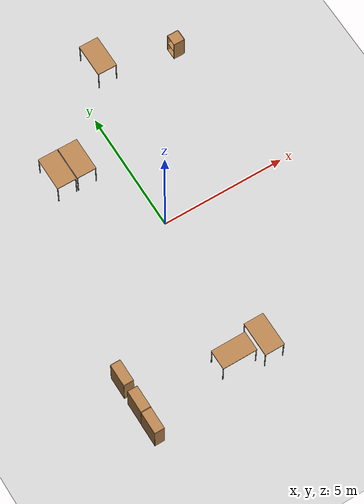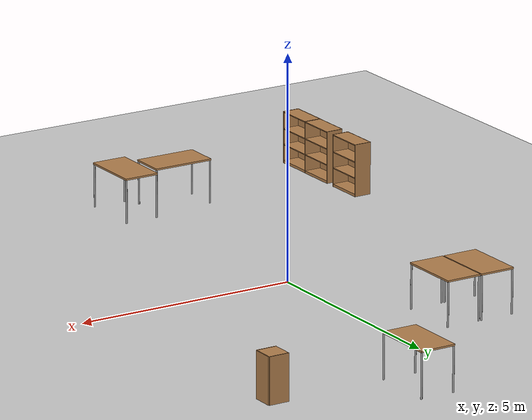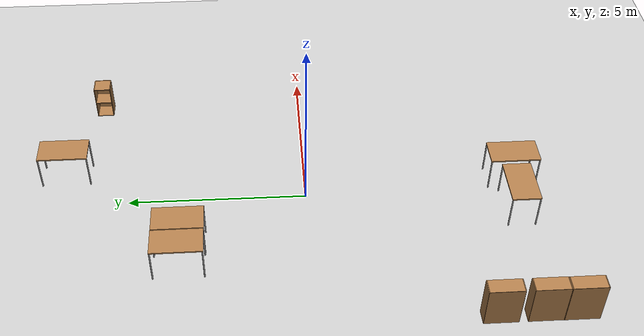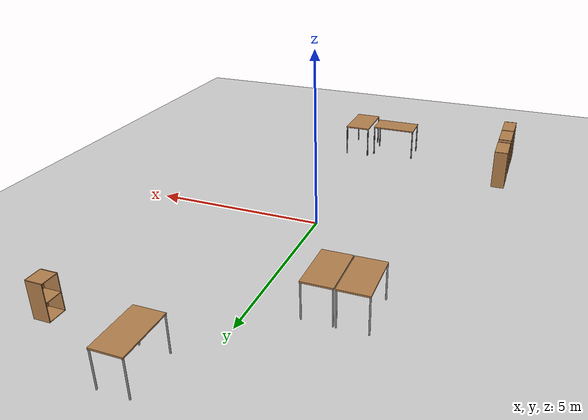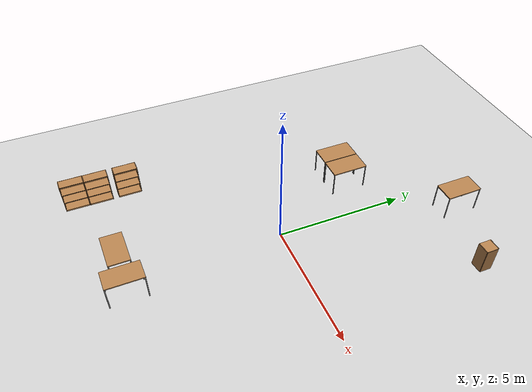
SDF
<sdf version="1.6">
 <world name="default">
  <light name="sun" type="directional">
   <pose>0 0 15 0 -0 0</pose>
   <diffuse>1 1 1 1</diffuse>
   <specular>0.1 0.1 0.1 1</specular>
   <attenuation>
    <range>1000</range>
    <constant>0.9</constant>
    <linear>0.01</linear>
    <quadratic>0.001</quadratic>
   </attenuation>
   <direction>-0.5 0.5 -1</direction>
  </light>
  <model name="ground_plane">
   <static>1</static>
   <link name="link">
    <collision name="collision">
     <geometry><plane><normal>0 0 1</normal><size>100 100</size></plane></geometry>
     <surface><friction><ode><mu>100</mu><mu2>50</mu2></ode></friction></surface>
    </collision>
    <visual name="visual">
     <transparency>1</transparency>
     <cast_shadows>0</cast_shadows>
     <geometry><plane><normal>0 0 1</normal><size>100 100</size></plane></geometry>
     <material>
      <script><uri>file://media/materials/scripts/gazebo.material</uri><name>Gazebo/Grey</name></script>
     </material>
    </visual>
   </link>
  </model>
  <gravity>0 0 -9.8</gravity>
  <magnetic_field>6e-06 2.3e-05 -4.2e-05</magnetic_field>
  <atmosphere type="adiabatic"/>
  <physics name="default_physics" default="0" type="ode">
   <max_step_size>0.001</max_step_size>
   <real_time_factor>1</real_time_factor>
   <real_time_update_rate>1000</real_time_update_rate>
  </physics>
  <scene><ambient>0.4 0.4 0.4 1</ambient><background>0.7 0.7 0.7 1</background><shadows>1</shadows></scene>
  <spherical_coordinates>
   <surface_model>EARTH_WGS84</surface_model>
   <latitude_deg>0</latitude_deg>
   <longitude_deg>0</longitude_deg>
   <elevation>0</elevation>
   <heading_deg>0</heading_deg>
  </spherical_coordinates>
  <model name="bookshelf">
   <static>1</static>
   <link name="link">
    <inertial><mass>1</mass></inertial>
    <collision name="back">
     <pose>0 0.005 0.6 0 -0 0</pose>
     <geometry><box><size>0.9 0.01 1.2</size></box></geometry>
    </collision>
    <visual name="visual1">
     <pose>0 0.005 0.6 0 -0 0</pose>
     <geometry><box><size>0.9 0.01 1.2</size></box></geometry>
     <material>
      <script><uri>file://media/materials/scripts/gazebo.material</uri><name>Gazebo/Wood</name></script>
     </material>
    </visual>
    <collision name="left_side">
     <pose>0.45 -0.195 0.6 0 -0 0</pose>
     <geometry><box><size>0.02 0.4 1.2</size></box></geometry>
    </collision>
    <visual name="visual2">
     <pose>0.45 -0.195 0.6 0 -0 0</pose>
     <geometry><box><size>0.02 0.4 1.2</size></box></geometry>
     <material>
      <script><uri>file://media/materials/scripts/gazebo.material</uri><name>Gazebo/Wood</name></script>
     </material>
    </visual>
    <collision name="right_side">
     <pose>-0.45 -0.195 0.6 0 -0 0</pose>
     <geometry><box><size>0.02 0.4 1.2</size></box></geometry>
    </collision>
    <visual name="visual3">
     <pose>-0.45 -0.195 0.6 0 -0 0</pose>
     <geometry><box><size>0.02 0.4 1.2</size></box></geometry>
     <material>
      <script><uri>file://media/materials/scripts/gazebo.material</uri><name>Gazebo/Wood</name></script>
     </material>
    </visual>
    <collision name="bottom">
     <pose>0 -0.195 0.03 0 -0 0</pose>
     <geometry><box><size>0.88 0.4 0.06</size></box></geometry>
    </collision>
    <visual name="visual4">
     <pose>0 -0.195 0.03 0 -0 0</pose>
     <geometry><box><size>0.88 0.4 0.06</size></box></geometry>
     <material>
      <script><uri>file://media/materials/scripts/gazebo.material</uri><name>Gazebo/Wood</name></script>
     </material>
    </visual>
    <collision name="top">
     <pose>0 -0.195 1.19 0 -0 0</pose>
     <geometry><box><size>0.88 0.4 0.02</size></box></geometry>
    </collision>
    <visual name="visual5">
     <pose>0 -0.195 1.19 0 -0 0</pose>
     <geometry><box><size>0.88 0.4 0.02</size></box></geometry>
     <material>
      <script><uri>file://media/materials/scripts/gazebo.material</uri><name>Gazebo/Wood</name></script>
     </material>
    </visual>
    <collision name="low_shelf">
     <pose>0 -0.195 0.43 0 -0 0</pose>
     <geometry><box><size>0.88 0.4 0.02</size></box></geometry>
    </collision>
    <visual name="visual6">
     <pose>0 -0.195 0.43 0 -0 0</pose>
     <geometry><box><size>0.88 0.4 0.02</size></box></geometry>
     <material>
      <script><uri>file://media/materials/scripts/gazebo.material</uri><name>Gazebo/Wood</name></script>
     </material>
    </visual>
    <collision name="high_shelf">
     <pose>0 -0.195 0.8 0 -0 0</pose>
     <geometry><box><size>0.88 0.4 0.02</size></box></geometry>
    </collision>
    <visual name="visual7">
     <pose>0 -0.195 0.8 0 -0 0</pose>
     <geometry><box><size>0.88 0.4 0.02</size></box></geometry>
     <material>
      <script><uri>file://media/materials/scripts/gazebo.material</uri><name>Gazebo/Wood</name></script>
     </material>
    </visual>
   </link>
   <pose>-4.76339 -5.75801 0 0 -0 1.57196</pose>
  </model>
  <model name="bookshelf_clone">
   <static>1</static>
   <link name="link">
    <inertial><mass>1</mass></inertial>
    <collision name="back">
     <pose>0 0.005 0.6 0 -0 0</pose>
     <geometry><box><size>0.9 0.01 1.2</size></box></geometry>
    </collision>
    <visual name="visual1">
     <pose>0 0.005 0.6 0 -0 0</pose>
     <geometry><box><size>0.9 0.01 1.2</size></box></geometry>
     <material>
      <script><uri>file://media/materials/scripts/gazebo.material</uri><name>Gazebo/Wood</name></script>
     </material>
    </visual>
    <collision name="left_side">
     <pose>0.45 -0.195 0.6 0 -0 0</pose>
     <geometry><box><size>0.02 0.4 1.2</size></box></geometry>
    </collision>
    <visual name="visual2">
     <pose>0.45 -0.195 0.6 0 -0 0</pose>
     <geometry><box><size>0.02 0.4 1.2</size></box></geometry>
     <material>
      <script><uri>file://media/materials/scripts/gazebo.material</uri><name>Gazebo/Wood</name></script>
     </material>
    </visual>
    <collision name="right_side">
     <pose>-0.45 -0.195 0.6 0 -0 0</pose>
     <geometry><box><size>0.02 0.4 1.2</size></box></geometry>
    </collision>
    <visual name="visual3">
     <pose>-0.45 -0.195 0.6 0 -0 0</pose>
     <geometry><box><size>0.02 0.4 1.2</size></box></geometry>
     <material>
      <script><uri>file://media/materials/scripts/gazebo.material</uri><name>Gazebo/Wood</name></script>
     </material>
    </visual>
    <collision name="bottom">
     <pose>0 -0.195 0.03 0 -0 0</pose>
     <geometry><box><size>0.88 0.4 0.06</size></box></geometry>
    </collision>
    <visual name="visual4">
     <pose>0 -0.195 0.03 0 -0 0</pose>
     <geometry><box><size>0.88 0.4 0.06</size></box></geometry>
     <material>
      <script><uri>file://media/materials/scripts/gazebo.material</uri><name>Gazebo/Wood</name></script>
     </material>
    </visual>
    <collision name="top">
     <pose>0 -0.195 1.19 0 -0 0</pose>
     <geometry><box><size>0.88 0.4 0.02</size></box></geometry>
    </collision>
    <visual name="visual5">
     <pose>0 -0.195 1.19 0 -0 0</pose>
     <geometry><box><size>0.88 0.4 0.02</size></box></geometry>
     <material>
      <script><uri>file://media/materials/scripts/gazebo.material</uri><name>Gazebo/Wood</name></script>
     </material>
    </visual>
    <collision name="low_shelf">
     <pose>0 -0.195 0.43 0 -0 0</pose>
     <geometry><box><size>0.88 0.4 0.02</size></box></geometry>
    </collision>
    <visual name="visual6">
     <pose>0 -0.195 0.43 0 -0 0</pose>
     <geometry><box><size>0.88 0.4 0.02</size></box></geometry>
     <material>
      <script><uri>file://media/materials/scripts/gazebo.material</uri><name>Gazebo/Wood</name></script>
     </material>
    </visual>
    <collision name="high_shelf">
     <pose>0 -0.195 0.8 0 -0 0</pose>
     <geometry><box><size>0.88 0.4 0.02</size></box></geometry>
    </collision>
    <visual name="visual7">
     <pose>0 -0.195 0.8 0 -0 0</pose>
     <geometry><box><size>0.88 0.4 0.02</size></box></geometry>
     <material>
      <script><uri>file://media/materials/scripts/gazebo.material</uri><name>Gazebo/Wood</name></script>
     </material>
    </visual>
   </link>
   <pose>-4.76825 -6.67766 0 0 -0 1.57211</pose>
  </model>
  <model name="bookshelf_clone_0">
   <static>1</static>
   <link name="link">
    <inertial><mass>1</mass></inertial>
    <collision name="back">
     <pose>0 0.005 0.6 0 -0 0</pose>
     <geometry><box><size>0.9 0.01 1.2</size></box></geometry>
    </collision>
    <visual name="visual1">
     <pose>0 0.005 0.6 0 -0 0</pose>
     <geometry><box><size>0.9 0.01 1.2</size></box></geometry>
     <material>
      <script><uri>file://media/materials/scripts/gazebo.material</uri><name>Gazebo/Wood</name></script>
     </material>
    </visual>
    <collision name="left_side">
     <pose>0.45 -0.195 0.6 0 -0 0</pose>
     <geometry><box><size>0.02 0.4 1.2</size></box></geometry>
    </collision>
    <visual name="visual2">
     <pose>0.45 -0.195 0.6 0 -0 0</pose>
     <geometry><box><size>0.02 0.4 1.2</size></box></geometry>
     <material>
      <script><uri>file://media/materials/scripts/gazebo.material</uri><name>Gazebo/Wood</name></script>
     </material>
    </visual>
    <collision name="right_side">
     <pose>-0.45 -0.195 0.6 0 -0 0</pose>
     <geometry><box><size>0.02 0.4 1.2</size></box></geometry>
    </collision>
    <visual name="visual3">
     <pose>-0.45 -0.195 0.6 0 -0 0</pose>
     <geometry><box><size>0.02 0.4 1.2</size></box></geometry>
     <material>
      <script><uri>file://media/materials/scripts/gazebo.material</uri><name>Gazebo/Wood</name></script>
     </material>
    </visual>
    <collision name="bottom">
     <pose>0 -0.195 0.03 0 -0 0</pose>
     <geometry><box><size>0.88 0.4 0.06</size></box></geometry>
    </collision>
    <visual name="visual4">
     <pose>0 -0.195 0.03 0 -0 0</pose>
     <geometry><box><size>0.88 0.4 0.06</size></box></geometry>
     <material>
      <script><uri>file://media/materials/scripts/gazebo.material</uri><name>Gazebo/Wood</name></script>
     </material>
    </visual>
    <collision name="top">
     <pose>0 -0.195 1.19 0 -0 0</pose>
     <geometry><box><size>0.88 0.4 0.02</size></box></geometry>
    </collision>
    <visual name="visual5">
     <pose>0 -0.195 1.19 0 -0 0</pose>
     <geometry><box><size>0.88 0.4 0.02</size></box></geometry>
     <material>
      <script><uri>file://media/materials/scripts/gazebo.material</uri><name>Gazebo/Wood</name></script>
     </material>
    </visual>
    <collision name="low_shelf">
     <pose>0 -0.195 0.43 0 -0 0</pose>
     <geometry><box><size>0.88 0.4 0.02</size></box></geometry>
    </collision>
    <visual name="visual6">
     <pose>0 -0.195 0.43 0 -0 0</pose>
     <geometry><box><size>0.88 0.4 0.02</size></box></geometry>
     <material>
      <script><uri>file://media/materials/scripts/gazebo.material</uri><name>Gazebo/Wood</name></script>
     </material>
    </visual>
    <collision name="high_shelf">
     <pose>0 -0.195 0.8 0 -0 0</pose>
     <geometry><box><size>0.88 0.4 0.02</size></box></geometry>
    </collision>
    <visual name="visual7">
     <pose>0 -0.195 0.8 0 -0 0</pose>
     <geometry><box><size>0.88 0.4 0.02</size></box></geometry>
     <material>
      <script><uri>file://media/materials/scripts/gazebo.material</uri><name>Gazebo/Wood</name></script>
     </material>
    </visual>
   </link>
   <pose>-4.76539 -4.61658 0 0 -0 1.57196</pose>
  </model>
  <model name="table_2">
   <static>0</static>
   <link name="link">
    <collision name="surface">
     <pose>0 0 1 0 -0 0</pose>
     <geometry><box><size>1.5 0.8 0.03</size></box></geometry>
     <surface><friction><ode><mu>0.6</mu><mu2>0.6</mu2></ode></friction></surface>
    </collision>
    <visual name="visual1">
     <pose>0 0 1 0 -0 0</pose>
     <geometry><box><size>1.4 0.8 0.04</size></box></geometry>
     <material>
      <script><uri>file://media/materials/scripts/gazebo.material</uri><name>Gazebo/Wood</name></script>
     </material>
    </visual>
    <collision name="front_left_leg">
     <pose>0.68 0.38 0.5 0 -0 0</pose>
     <geometry><cylinder><radius>0.02</radius><length>1</length></cylinder></geometry>
    </collision>
    <visual name="front_left_leg">
     <pose>0.68 0.38 0.5 0 -0 0</pose>
     <geometry><cylinder><radius>0.02</radius><length>1</length></cylinder></geometry>
     <material>
      <script><uri>file://media/materials/scripts/gazebo.material</uri><name>Gazebo/Grey</name></script>
     </material>
    </visual>
    <collision name="front_right_leg">
     <pose>0.68 -0.38 0.5 0 -0 0</pose>
     <geometry><cylinder><radius>0.02</radius><length>1</length></cylinder></geometry>
    </collision>
    <visual name="front_right_leg">
     <pose>0.68 -0.38 0.5 0 -0 0</pose>
     <geometry><cylinder><radius>0.02</radius><length>1</length></cylinder></geometry>
     <material>
      <script><uri>file://media/materials/scripts/gazebo.material</uri><name>Gazebo/Grey</name></script>
     </material>
    </visual>
    <collision name="back_right_leg">
     <pose>-0.68 -0.38 0.5 0 -0 0</pose>
     <geometry><cylinder><radius>0.02</radius><length>1</length></cylinder></geometry>
    </collision>
    <visual name="back_right_leg">
     <pose>-0.68 -0.38 0.5 0 -0 0</pose>
     <geometry><cylinder><radius>0.02</radius><length>1</length></cylinder></geometry>
     <material>
      <script><uri>file://media/materials/scripts/gazebo.material</uri><name>Gazebo/Grey</name></script>
     </material>
    </visual>
    <collision name="back_left_leg">
     <pose>-0.68 0.38 0.5 0 -0 0</pose>
     <geometry><cylinder><radius>0.02</radius><length>1</length></cylinder></geometry>
    </collision>
    <visual name="back_left_leg">
     <pose>-0.68 0.38 0.5 0 -0 0</pose>
     <geometry><cylinder><radius>0.02</radius><length>1</length></cylinder></geometry>
     <material>
      <script><uri>file://media/materials/scripts/gazebo.material</uri><name>Gazebo/Grey</name></script>
     </material>
    </visual>
    <inertial>
     <inertia><ixx>1</ixx><ixy>0</ixy><ixz>0</ixz><iyy>1</iyy><iyz>0</iyz><izz>1</izz></inertia>
     <mass>1</mass>
    </inertial>
   </link>
   <pose>-0.765605 -5.87386 -3e-06 0 -4e-06 0</pose>
  </model>
  <model name="table_3">
   <static>0</static>
   <link name="link">
    <collision name="surface">
     <pose>0 0 1 0 -0 0</pose>
     <geometry><box><size>1.5 0.8 0.03</size></box></geometry>
     <surface><friction><ode><mu>0.6</mu><mu2>0.6</mu2></ode></friction></surface>
    </collision>
    <visual name="visual1">
     <pose>0 0 1 0 -0 0</pose>
     <geometry><box><size>1.4 0.8 0.04</size></box></geometry>
     <material>
      <script><uri>file://media/materials/scripts/gazebo.material</uri><name>Gazebo/Wood</name></script>
     </material>
    </visual>
    <collision name="front_left_leg">
     <pose>0.68 0.38 0.5 0 -0 0</pose>
     <geometry><cylinder><radius>0.02</radius><length>1</length></cylinder></geometry>
    </collision>
    <visual name="front_left_leg">
     <pose>0.68 0.38 0.5 0 -0 0</pose>
     <geometry><cylinder><radius>0.02</radius><length>1</length></cylinder></geometry>
     <material>
      <script><uri>file://media/materials/scripts/gazebo.material</uri><name>Gazebo/Grey</name></script>
     </material>
    </visual>
    <collision name="front_right_leg">
     <pose>0.68 -0.38 0.5 0 -0 0</pose>
     <geometry><cylinder><radius>0.02</radius><length>1</length></cylinder></geometry>
    </collision>
    <visual name="front_right_leg">
     <pose>0.68 -0.38 0.5 0 -0 0</pose>
     <geometry><cylinder><radius>0.02</radius><length>1</length></cylinder></geometry>
     <material>
      <script><uri>file://media/materials/scripts/gazebo.material</uri><name>Gazebo/Grey</name></script>
     </material>
    </visual>
    <collision name="back_right_leg">
     <pose>-0.68 -0.38 0.5 0 -0 0</pose>
     <geometry><cylinder><radius>0.02</radius><length>1</length></cylinder></geometry>
    </collision>
    <visual name="back_right_leg">
     <pose>-0.68 -0.38 0.5 0 -0 0</pose>
     <geometry><cylinder><radius>0.02</radius><length>1</length></cylinder></geometry>
     <material>
      <script><uri>file://media/materials/scripts/gazebo.material</uri><name>Gazebo/Grey</name></script>
     </material>
    </visual>
    <collision name="back_left_leg">
     <pose>-0.68 0.38 0.5 0 -0 0</pose>
     <geometry><cylinder><radius>0.02</radius><length>1</length></cylinder></geometry>
    </collision>
    <visual name="back_left_leg">
     <pose>-0.68 0.38 0.5 0 -0 0</pose>
     <geometry><cylinder><radius>0.02</radius><length>1</length></cylinder></geometry>
     <material>
      <script><uri>file://media/materials/scripts/gazebo.material</uri><name>Gazebo/Grey</name></script>
     </material>
    </visual>
    <inertial>
     <inertia><ixx>1</ixx><ixy>0</ixy><ixz>0</ixz><iyy>1</iyy><iyz>0</iyz><izz>1</izz></inertia>
     <mass>1</mass>
    </inertial>
   </link>
   <pose>0.461007 -5.90201 -3e-06 -0 -4e-06 1.57393</pose>
  </model>
  <model name="cabinet">
   <static>1</static>
   <link name="cabinet_bottom_plate">
    <inertial>
     <pose>0 0 -1 0 -0 0</pose>
     <inertia><ixx>2.05</ixx><ixy>0</ixy><ixz>0</ixz><iyy>2.05</iyy><iyz>0</iyz><izz>2.05</izz></inertia>
     <mass>25</mass>
    </inertial>
    <collision name="cabinet_bottom_plate_geom">
     <pose>0 0 0.01 0 -0 0</pose>
     <geometry><box><size>0.45 0.45 0.02</size></box></geometry>
    </collision>
    <visual name="cabinet_bottom_plate_geom_visual">
     <pose>0 0 0.01 0 -0 0</pose>
     <geometry><box><size>0.45 0.45 0.02</size></box></geometry>
     <material>
      <script><uri>file://media/materials/scripts/gazebo.material</uri><name>Gazebo/Wood</name></script>
     </material>
    </visual>
    <collision name="cabinet_bottom_plate_geom_cabinet_back_plate">
     <pose>0.235 0 0.51 0 -0 0</pose>
     <geometry><box><size>0.02 0.45 1.02</size></box></geometry>
    </collision>
    <visual name="cabinet_bottom_plate_geom_cabinet_back_plate_visual">
     <pose>0.235 0 0.51 0 -0 0</pose>
     <geometry><box><size>0.02 0.45 1.02</size></box></geometry>
     <material>
      <script><uri>file://media/materials/scripts/gazebo.material</uri><name>Gazebo/Wood</name></script>
     </material>
    </visual>
    <collision name="cabinet_bottom_plate_geom_cabinet_left_plate">
     <pose>0 0.235 0.51 0 -0 0</pose>
     <geometry><box><size>0.45 0.02 1.02</size></box></geometry>
    </collision>
    <visual name="cabinet_bottom_plate_geom_cabinet_left_plate_visual">
     <pose>0 0.235 0.51 0 -0 0</pose>
     <geometry><box><size>0.45 0.02 1.02</size></box></geometry>
     <material>
      <script><uri>file://media/materials/scripts/gazebo.material</uri><name>Gazebo/Wood</name></script>
     </material>
    </visual>
    <collision name="cabinet_bottom_plate_geom_cabinet_middle_plate">
     <pose>0 0 0.51 0 -0 0</pose>
     <geometry><box><size>0.45 0.45 0.02</size></box></geometry>
    </collision>
    <visual name="cabinet_bottom_plate_geom_cabinet_middle_plate_visual">
     <pose>0 0 0.51 0 -0 0</pose>
     <geometry><box><size>0.45 0.45 0.02</size></box></geometry>
     <material>
      <script><uri>file://media/materials/scripts/gazebo.material</uri><name>Gazebo/Wood</name></script>
     </material>
    </visual>
    <collision name="cabinet_bottom_plate_geom_cabinet_right_plate">
     <pose>0 -0.235 0.51 0 -0 0</pose>
     <geometry><box><size>0.45 0.02 1.02</size></box></geometry>
    </collision>
    <visual name="cabinet_bottom_plate_geom_cabinet_right_plate_visual">
     <pose>0 -0.235 0.51 0 -0 0</pose>
     <geometry><box><size>0.45 0.02 1.02</size></box></geometry>
     <material>
      <script><uri>file://media/materials/scripts/gazebo.material</uri><name>Gazebo/Wood</name></script>
     </material>
    </visual>
    <collision name="cabinet_bottom_plate_geom_cabinet_top_plate">
     <pose>0 0 1.01 0 -0 0</pose>
     <geometry><box><size>0.45 0.45 0.02</size></box></geometry>
    </collision>
    <visual name="cabinet_bottom_plate_geom_cabinet_top_plate_visual">
     <pose>0 0 1.01 0 -0 0</pose>
     <geometry><box><size>0.45 0.45 0.02</size></box></geometry>
     <material>
      <script><uri>file://media/materials/scripts/gazebo.material</uri><name>Gazebo/Wood</name></script>
     </material>
    </visual>
   </link>
   <pose>4.12031 5.97514 0 0 -0 0</pose>
  </model>
  <model name="table_3_clone">
   <static>0</static>
   <link name="link">
    <collision name="surface">
     <pose>0 0 1 0 -0 0</pose>
     <geometry><box><size>1.5 0.8 0.03</size></box></geometry>
     <surface><friction><ode><mu>0.6</mu><mu2>0.6</mu2></ode></friction></surface>
    </collision>
    <visual name="visual1">
     <pose>0 0 1 0 -0 0</pose>
     <geometry><box><size>1.4 0.8 0.04</size></box></geometry>
     <material>
      <script><uri>file://media/materials/scripts/gazebo.material</uri><name>Gazebo/Wood</name></script>
     </material>
    </visual>
    <collision name="front_left_leg">
     <pose>0.68 0.38 0.5 0 -0 0</pose>
     <geometry><cylinder><radius>0.02</radius><length>1</length></cylinder></geometry>
    </collision>
    <visual name="front_left_leg">
     <pose>0.68 0.38 0.5 0 -0 0</pose>
     <geometry><cylinder><radius>0.02</radius><length>1</length></cylinder></geometry>
     <material>
      <script><uri>file://media/materials/scripts/gazebo.material</uri><name>Gazebo/Grey</name></script>
     </material>
    </visual>
    <collision name="front_right_leg">
     <pose>0.68 -0.38 0.5 0 -0 0</pose>
     <geometry><cylinder><radius>0.02</radius><length>1</length></cylinder></geometry>
    </collision>
    <visual name="front_right_leg">
     <pose>0.68 -0.38 0.5 0 -0 0</pose>
     <geometry><cylinder><radius>0.02</radius><length>1</length></cylinder></geometry>
     <material>
      <script><uri>file://media/materials/scripts/gazebo.material</uri><name>Gazebo/Grey</name></script>
     </material>
    </visual>
    <collision name="back_right_leg">
     <pose>-0.68 -0.38 0.5 0 -0 0</pose>
     <geometry><cylinder><radius>0.02</radius><length>1</length></cylinder></geometry>
    </collision>
    <visual name="back_right_leg">
     <pose>-0.68 -0.38 0.5 0 -0 0</pose>
     <geometry><cylinder><radius>0.02</radius><length>1</length></cylinder></geometry>
     <material>
      <script><uri>file://media/materials/scripts/gazebo.material</uri><name>Gazebo/Grey</name></script>
     </material>
    </visual>
    <collision name="back_left_leg">
     <pose>-0.68 0.38 0.5 0 -0 0</pose>
     <geometry><cylinder><radius>0.02</radius><length>1</length></cylinder></geometry>
    </collision>
    <visual name="back_left_leg">
     <pose>-0.68 0.38 0.5 0 -0 0</pose>
     <geometry><cylinder><radius>0.02</radius><length>1</length></cylinder></geometry>
     <material>
      <script><uri>file://media/materials/scripts/gazebo.material</uri><name>Gazebo/Grey</name></script>
     </material>
    </visual>
    <inertial>
     <inertia><ixx>1</ixx><ixy>0</ixy><ixz>0</ixz><iyy>1</iyy><iyz>0</iyz><izz>1</izz></inertia>
     <mass>1</mass>
    </inertial>
   </link>
   <pose>-1.62259 3.50367 -3e-06 -0 -4e-06 1.57393</pose>
  </model>
  <model name="table_3_clone_clone">
   <static>0</static>
   <link name="link">
    <collision name="surface">
     <pose>0 0 1 0 -0 0</pose>
     <geometry><box><size>1.5 0.8 0.03</size></box></geometry>
     <surface><friction><ode><mu>0.6</mu><mu2>0.6</mu2></ode></friction></surface>
    </collision>
    <visual name="visual1">
     <pose>0 0 1 0 -0 0</pose>
     <geometry><box><size>1.4 0.8 0.04</size></box></geometry>
     <material>
      <script><uri>file://media/materials/scripts/gazebo.material</uri><name>Gazebo/Wood</name></script>
     </material>
    </visual>
    <collision name="front_left_leg">
     <pose>0.68 0.38 0.5 0 -0 0</pose>
     <geometry><cylinder><radius>0.02</radius><length>1</length></cylinder></geometry>
    </collision>
    <visual name="front_left_leg">
     <pose>0.68 0.38 0.5 0 -0 0</pose>
     <geometry><cylinder><radius>0.02</radius><length>1</length></cylinder></geometry>
     <material>
      <script><uri>file://media/materials/scripts/gazebo.material</uri><name>Gazebo/Grey</name></script>
     </material>
    </visual>
    <collision name="front_right_leg">
     <pose>0.68 -0.38 0.5 0 -0 0</pose>
     <geometry><cylinder><radius>0.02</radius><length>1</length></cylinder></geometry>
    </collision>
    <visual name="front_right_leg">
     <pose>0.68 -0.38 0.5 0 -0 0</pose>
     <geometry><cylinder><radius>0.02</radius><length>1</length></cylinder></geometry>
     <material>
      <script><uri>file://media/materials/scripts/gazebo.material</uri><name>Gazebo/Grey</name></script>
     </material>
    </visual>
    <collision name="back_right_leg">
     <pose>-0.68 -0.38 0.5 0 -0 0</pose>
     <geometry><cylinder><radius>0.02</radius><length>1</length></cylinder></geometry>
    </collision>
    <visual name="back_right_leg">
     <pose>-0.68 -0.38 0.5 0 -0 0</pose>
     <geometry><cylinder><radius>0.02</radius><length>1</length></cylinder></geometry>
     <material>
      <script><uri>file://media/materials/scripts/gazebo.material</uri><name>Gazebo/Grey</name></script>
     </material>
    </visual>
    <collision name="back_left_leg">
     <pose>-0.68 0.38 0.5 0 -0 0</pose>
     <geometry><cylinder><radius>0.02</radius><length>1</length></cylinder></geometry>
    </collision>
    <visual name="back_left_leg">
     <pose>-0.68 0.38 0.5 0 -0 0</pose>
     <geometry><cylinder><radius>0.02</radius><length>1</length></cylinder></geometry>
     <material>
      <script><uri>file://media/materials/scripts/gazebo.material</uri><name>Gazebo/Grey</name></script>
     </material>
    </visual>
    <inertial>
     <inertia><ixx>1</ixx><ixy>0</ixy><ixz>0</ixz><iyy>1</iyy><iyz>0</iyz><izz>1</izz></inertia>
     <mass>1</mass>
    </inertial>
   </link>
   <pose>1.22988 6.82466 0 -1e-06 -0 1.57393</pose>
  </model>
  <model name="table_3_clone_clone_0">
   <static>0</static>
   <link name="link">
    <collision name="surface">
     <pose>0 0 1 0 -0 0</pose>
     <geometry><box><size>1.5 0.8 0.03</size></box></geometry>
     <surface><friction><ode><mu>0.6</mu><mu2>0.6</mu2></ode></friction></surface>
    </collision>
    <visual name="visual1">
     <pose>0 0 1 0 -0 0</pose>
     <geometry><box><size>1.4 0.8 0.04</size></box></geometry>
     <material>
      <script><uri>file://media/materials/scripts/gazebo.material</uri><name>Gazebo/Wood</name></script>
     </material>
    </visual>
    <collision name="front_left_leg">
     <pose>0.68 0.38 0.5 0 -0 0</pose>
     <geometry><cylinder><radius>0.02</radius><length>1</length></cylinder></geometry>
    </collision>
    <visual name="front_left_leg">
     <pose>0.68 0.38 0.5 0 -0 0</pose>
     <geometry><cylinder><radius>0.02</radius><length>1</length></cylinder></geometry>
     <material>
      <script><uri>file://media/materials/scripts/gazebo.material</uri><name>Gazebo/Grey</name></script>
     </material>
    </visual>
    <collision name="front_right_leg">
     <pose>0.68 -0.38 0.5 0 -0 0</pose>
     <geometry><cylinder><radius>0.02</radius><length>1</length></cylinder></geometry>
    </collision>
    <visual name="front_right_leg">
     <pose>0.68 -0.38 0.5 0 -0 0</pose>
     <geometry><cylinder><radius>0.02</radius><length>1</length></cylinder></geometry>
     <material>
      <script><uri>file://media/materials/scripts/gazebo.material</uri><name>Gazebo/Grey</name></script>
     </material>
    </visual>
    <collision name="back_right_leg">
     <pose>-0.68 -0.38 0.5 0 -0 0</pose>
     <geometry><cylinder><radius>0.02</radius><length>1</length></cylinder></geometry>
    </collision>
    <visual name="back_right_leg">
     <pose>-0.68 -0.38 0.5 0 -0 0</pose>
     <geometry><cylinder><radius>0.02</radius><length>1</length></cylinder></geometry>
     <material>
      <script><uri>file://media/materials/scripts/gazebo.material</uri><name>Gazebo/Grey</name></script>
     </material>
    </visual>
    <collision name="back_left_leg">
     <pose>-0.68 0.38 0.5 0 -0 0</pose>
     <geometry><cylinder><radius>0.02</radius><length>1</length></cylinder></geometry>
    </collision>
    <visual name="back_left_leg">
     <pose>-0.68 0.38 0.5 0 -0 0</pose>
     <geometry><cylinder><radius>0.02</radius><length>1</length></cylinder></geometry>
     <material>
      <script><uri>file://media/materials/scripts/gazebo.material</uri><name>Gazebo/Grey</name></script>
     </material>
    </visual>
    <inertial>
     <inertia><ixx>1</ixx><ixy>0</ixy><ixz>0</ixz><iyy>1</iyy><iyz>0</iyz><izz>1</izz></inertia>
     <mass>1</mass>
    </inertial>
   </link>
   <pose>-2.45237 3.50568 -3e-06 -2e-06 4e-06 1.57393</pose>
  </model>
 </world>
</sdf>
